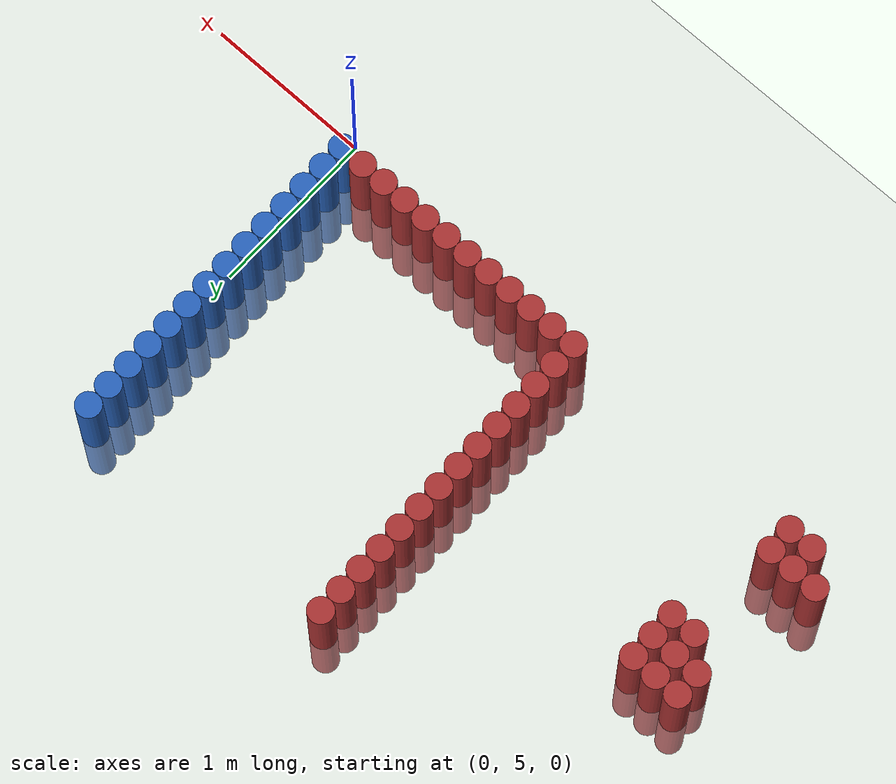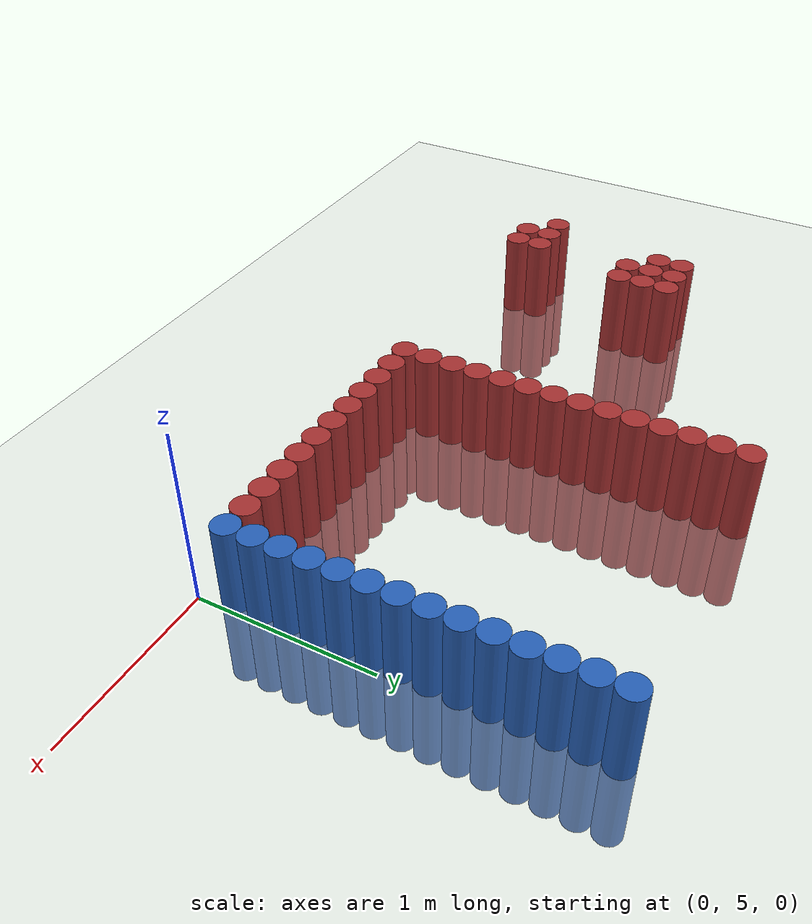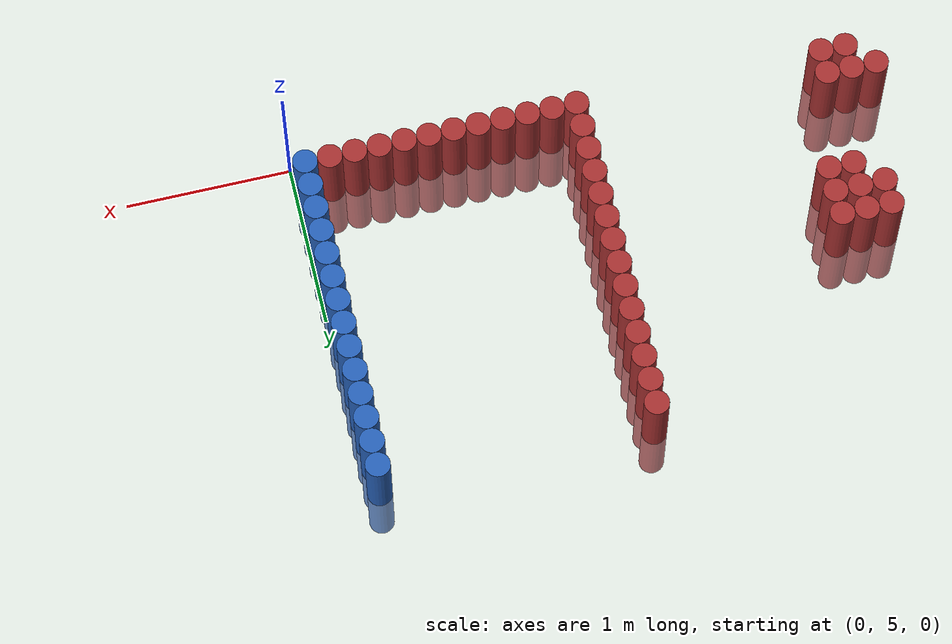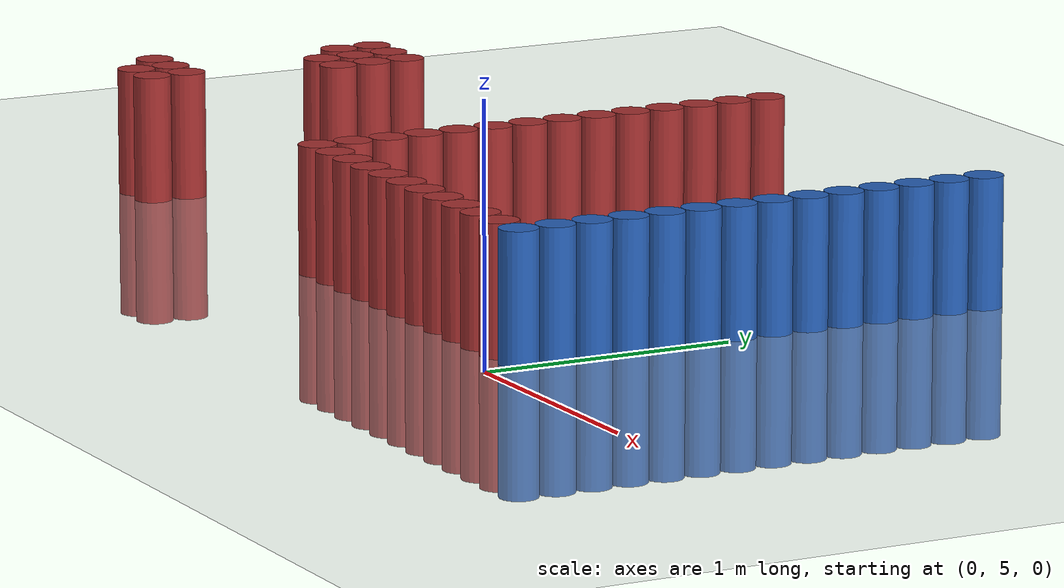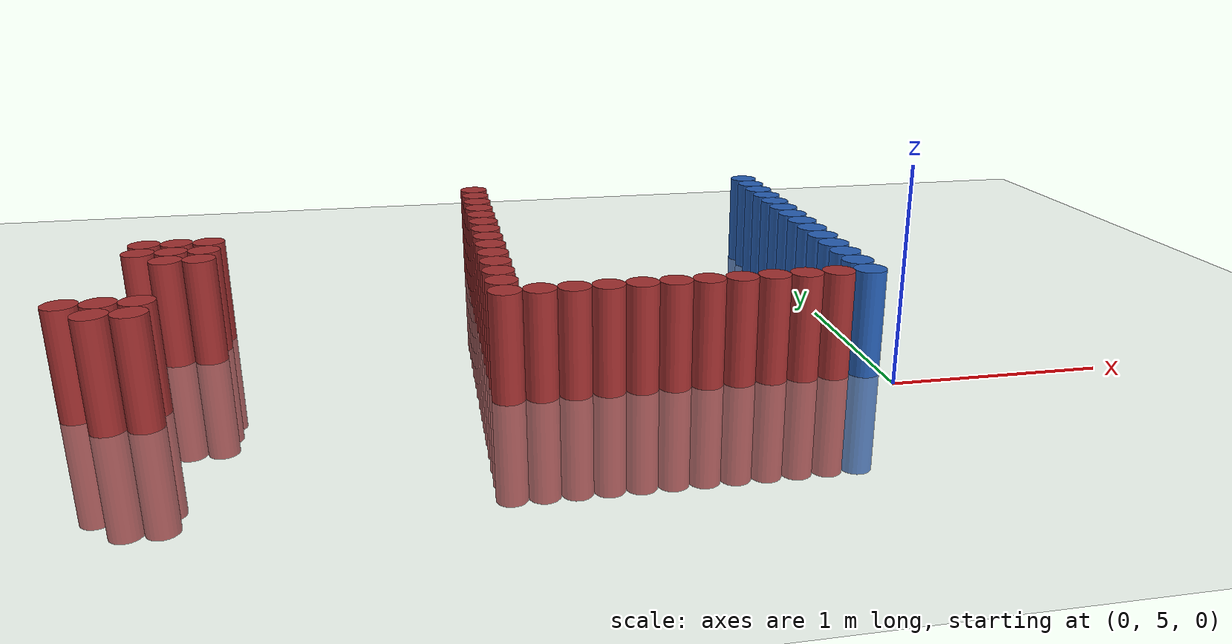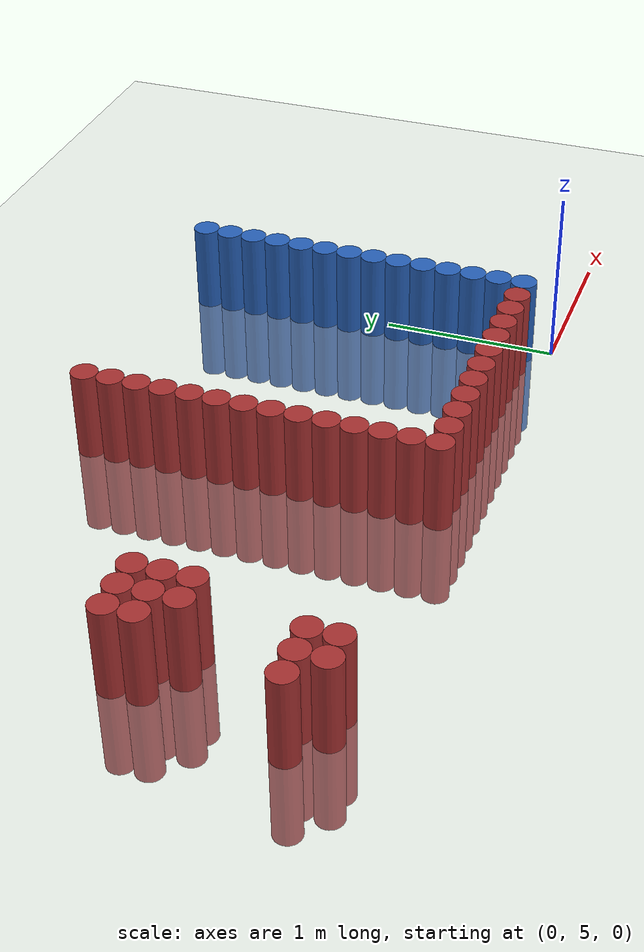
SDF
<sdf version="1.6">
 <world name="default">
  <model name="ground_plane">
   <static>1</static>
   <link name="link">
    <collision name="collision">
     <geometry><plane><normal>0 0 1</normal><size>100 100</size></plane></geometry>
     <surface><friction><ode><mu>100</mu><mu2>50</mu2></ode></friction></surface>
    </collision>
    <visual name="visual">
     <cast_shadows>0</cast_shadows>
     <geometry><plane><normal>0 0 1</normal><size>100 100</size></plane></geometry>
     <material>
      <script><uri>file://media/materials/scripts/gazebo.material</uri><name>Gazebo/Grey</name></script>
     </material>
    </visual>
   </link>
  </model>
  <model name="unit_cylinder_256">
   <static>1</static>
   <pose>-3.525000 5.325000 0.000000 0.000000 0.000000 0.000000</pose>
   <link name="link">
    <inertial>
     <mass>1</mass>
     <inertia><ixx>0.145833</ixx><ixy>0</ixy><ixz>0</ixz><iyy>0.145833</iyy><iyz>0</iyz><izz>0.125</izz></inertia>
    </inertial>
    <collision name="collision">
     <geometry><cylinder><radius>0.075000</radius><length>1</length></cylinder></geometry>
    </collision>
    <visual name="visual">
     <geometry><cylinder><radius>0.075000</radius><length>1</length></cylinder></geometry>
     <material>
      <ambient>0.648000 0.192000 0.192000 1</ambient>
      <diffuse>0.648000 0.192000 0.192000 1</diffuse>
     </material>
     <material>
      <script><name>Gazebo/Grey</name><uri>file://media/materials/scripts/gazebo.material</uri></script>
     </material>
    </visual>
   </link>
  </model>
  <model name="unit_cylinder_259">
   <static>1</static>
   <pose>-3.375000 5.175000 0.000000 0.000000 0.000000 0.000000</pose>
   <link name="link">
    <inertial>
     <mass>1</mass>
     <inertia><ixx>0.145833</ixx><ixy>0</ixy><ixz>0</ixz><iyy>0.145833</iyy><iyz>0</iyz><izz>0.125</izz></inertia>
    </inertial>
    <collision name="collision">
     <geometry><cylinder><radius>0.075000</radius><length>1</length></cylinder></geometry>
    </collision>
    <visual name="visual">
     <geometry><cylinder><radius>0.075000</radius><length>1</length></cylinder></geometry>
     <material>
      <ambient>0.648000 0.192000 0.192000 1</ambient>
      <diffuse>0.648000 0.192000 0.192000 1</diffuse>
     </material>
     <material>
      <script><name>Gazebo/Grey</name><uri>file://media/materials/scripts/gazebo.material</uri></script>
     </material>
    </visual>
   </link>
  </model>
  <model name="unit_cylinder_260">
   <static>1</static>
   <pose>-3.375000 5.325000 0.000000 0.000000 0.000000 0.000000</pose>
   <link name="link">
    <inertial>
     <mass>1</mass>
     <inertia><ixx>0.145833</ixx><ixy>0</ixy><ixz>0</ixz><iyy>0.145833</iyy><iyz>0</iyz><izz>0.125</izz></inertia>
    </inertial>
    <collision name="collision">
     <geometry><cylinder><radius>0.075000</radius><length>1</length></cylinder></geometry>
    </collision>
    <visual name="visual">
     <geometry><cylinder><radius>0.075000</radius><length>1</length></cylinder></geometry>
     <material>
      <ambient>0.648000 0.192000 0.192000 1</ambient>
      <diffuse>0.648000 0.192000 0.192000 1</diffuse>
     </material>
     <material>
      <script><name>Gazebo/Grey</name><uri>file://media/materials/scripts/gazebo.material</uri></script>
     </material>
    </visual>
   </link>
  </model>
  <model name="unit_cylinder_261">
   <static>1</static>
   <pose>-3.375000 6.075000 0.000000 0.000000 0.000000 0.000000</pose>
   <link name="link">
    <inertial>
     <mass>1</mass>
     <inertia><ixx>0.145833</ixx><ixy>0</ixy><ixz>0</ixz><iyy>0.145833</iyy><iyz>0</iyz><izz>0.125</izz></inertia>
    </inertial>
    <collision name="collision">
     <geometry><cylinder><radius>0.075000</radius><length>1</length></cylinder></geometry>
    </collision>
    <visual name="visual">
     <geometry><cylinder><radius>0.075000</radius><length>1</length></cylinder></geometry>
     <material>
      <ambient>0.648000 0.192000 0.192000 1</ambient>
      <diffuse>0.648000 0.192000 0.192000 1</diffuse>
     </material>
     <material>
      <script><name>Gazebo/Grey</name><uri>file://media/materials/scripts/gazebo.material</uri></script>
     </material>
    </visual>
   </link>
  </model>
  <model name="unit_cylinder_262">
   <static>1</static>
   <pose>-3.375000 6.225000 0.000000 0.000000 0.000000 0.000000</pose>
   <link name="link">
    <inertial>
     <mass>1</mass>
     <inertia><ixx>0.145833</ixx><ixy>0</ixy><ixz>0</ixz><iyy>0.145833</iyy><iyz>0</iyz><izz>0.125</izz></inertia>
    </inertial>
    <collision name="collision">
     <geometry><cylinder><radius>0.075000</radius><length>1</length></cylinder></geometry>
    </collision>
    <visual name="visual">
     <geometry><cylinder><radius>0.075000</radius><length>1</length></cylinder></geometry>
     <material>
      <ambient>0.648000 0.192000 0.192000 1</ambient>
      <diffuse>0.648000 0.192000 0.192000 1</diffuse>
     </material>
     <material>
      <script><name>Gazebo/Grey</name><uri>file://media/materials/scripts/gazebo.material</uri></script>
     </material>
    </visual>
   </link>
  </model>
  <model name="unit_cylinder_267">
   <static>1</static>
   <pose>-3.225000 5.175000 0.000000 0.000000 0.000000 0.000000</pose>
   <link name="link">
    <inertial>
     <mass>1</mass>
     <inertia><ixx>0.145833</ixx><ixy>0</ixy><ixz>0</ixz><iyy>0.145833</iyy><iyz>0</iyz><izz>0.125</izz></inertia>
    </inertial>
    <collision name="collision">
     <geometry><cylinder><radius>0.075000</radius><length>1</length></cylinder></geometry>
    </collision>
    <visual name="visual">
     <geometry><cylinder><radius>0.075000</radius><length>1</length></cylinder></geometry>
     <material>
      <ambient>0.648000 0.192000 0.192000 1</ambient>
      <diffuse>0.648000 0.192000 0.192000 1</diffuse>
     </material>
     <material>
      <script><name>Gazebo/Grey</name><uri>file://media/materials/scripts/gazebo.material</uri></script>
     </material>
    </visual>
   </link>
  </model>
  <model name="unit_cylinder_268">
   <static>1</static>
   <pose>-3.225000 5.325000 0.000000 0.000000 0.000000 0.000000</pose>
   <link name="link">
    <inertial>
     <mass>1</mass>
     <inertia><ixx>0.145833</ixx><ixy>0</ixy><ixz>0</ixz><iyy>0.145833</iyy><iyz>0</iyz><izz>0.125</izz></inertia>
    </inertial>
    <collision name="collision">
     <geometry><cylinder><radius>0.075000</radius><length>1</length></cylinder></geometry>
    </collision>
    <visual name="visual">
     <geometry><cylinder><radius>0.075000</radius><length>1</length></cylinder></geometry>
     <material>
      <ambient>0.648000 0.192000 0.192000 1</ambient>
      <diffuse>0.648000 0.192000 0.192000 1</diffuse>
     </material>
     <material>
      <script><name>Gazebo/Grey</name><uri>file://media/materials/scripts/gazebo.material</uri></script>
     </material>
    </visual>
   </link>
  </model>
  <model name="unit_cylinder_269">
   <static>1</static>
   <pose>-3.225000 5.925000 0.000000 0.000000 0.000000 0.000000</pose>
   <link name="link">
    <inertial>
     <mass>1</mass>
     <inertia><ixx>0.145833</ixx><ixy>0</ixy><ixz>0</ixz><iyy>0.145833</iyy><iyz>0</iyz><izz>0.125</izz></inertia>
    </inertial>
    <collision name="collision">
     <geometry><cylinder><radius>0.075000</radius><length>1</length></cylinder></geometry>
    </collision>
    <visual name="visual">
     <geometry><cylinder><radius>0.075000</radius><length>1</length></cylinder></geometry>
     <material>
      <ambient>0.648000 0.192000 0.192000 1</ambient>
      <diffuse>0.648000 0.192000 0.192000 1</diffuse>
     </material>
     <material>
      <script><name>Gazebo/Grey</name><uri>file://media/materials/scripts/gazebo.material</uri></script>
     </material>
    </visual>
   </link>
  </model>
  <model name="unit_cylinder_270">
   <static>1</static>
   <pose>-3.225000 6.075000 0.000000 0.000000 0.000000 0.000000</pose>
   <link name="link">
    <inertial>
     <mass>1</mass>
     <inertia><ixx>0.145833</ixx><ixy>0</ixy><ixz>0</ixz><iyy>0.145833</iyy><iyz>0</iyz><izz>0.125</izz></inertia>
    </inertial>
    <collision name="collision">
     <geometry><cylinder><radius>0.075000</radius><length>1</length></cylinder></geometry>
    </collision>
    <visual name="visual">
     <geometry><cylinder><radius>0.075000</radius><length>1</length></cylinder></geometry>
     <material>
      <ambient>0.648000 0.192000 0.192000 1</ambient>
      <diffuse>0.648000 0.192000 0.192000 1</diffuse>
     </material>
     <material>
      <script><name>Gazebo/Grey</name><uri>file://media/materials/scripts/gazebo.material</uri></script>
     </material>
    </visual>
   </link>
  </model>
  <model name="unit_cylinder_271">
   <static>1</static>
   <pose>-3.225000 6.225000 0.000000 0.000000 0.000000 0.000000</pose>
   <link name="link">
    <inertial>
     <mass>1</mass>
     <inertia><ixx>0.145833</ixx><ixy>0</ixy><ixz>0</ixz><iyy>0.145833</iyy><iyz>0</iyz><izz>0.125</izz></inertia>
    </inertial>
    <collision name="collision">
     <geometry><cylinder><radius>0.075000</radius><length>1</length></cylinder></geometry>
    </collision>
    <visual name="visual">
     <geometry><cylinder><radius>0.075000</radius><length>1</length></cylinder></geometry>
     <material>
      <ambient>0.648000 0.192000 0.192000 1</ambient>
      <diffuse>0.648000 0.192000 0.192000 1</diffuse>
     </material>
     <material>
      <script><name>Gazebo/Grey</name><uri>file://media/materials/scripts/gazebo.material</uri></script>
     </material>
    </visual>
   </link>
  </model>
  <model name="unit_cylinder_274">
   <static>1</static>
   <pose>-3.075000 5.925000 0.000000 0.000000 0.000000 0.000000</pose>
   <link name="link">
    <inertial>
     <mass>1</mass>
     <inertia><ixx>0.145833</ixx><ixy>0</ixy><ixz>0</ixz><iyy>0.145833</iyy><iyz>0</iyz><izz>0.125</izz></inertia>
    </inertial>
    <collision name="collision">
     <geometry><cylinder><radius>0.075000</radius><length>1</length></cylinder></geometry>
    </collision>
    <visual name="visual">
     <geometry><cylinder><radius>0.075000</radius><length>1</length></cylinder></geometry>
     <material>
      <ambient>0.648000 0.192000 0.192000 1</ambient>
      <diffuse>0.648000 0.192000 0.192000 1</diffuse>
     </material>
     <material>
      <script><name>Gazebo/Grey</name><uri>file://media/materials/scripts/gazebo.material</uri></script>
     </material>
    </visual>
   </link>
  </model>
  <model name="unit_cylinder_275">
   <static>1</static>
   <pose>-3.075000 6.075000 0.000000 0.000000 0.000000 0.000000</pose>
   <link name="link">
    <inertial>
     <mass>1</mass>
     <inertia><ixx>0.145833</ixx><ixy>0</ixy><ixz>0</ixz><iyy>0.145833</iyy><iyz>0</iyz><izz>0.125</izz></inertia>
    </inertial>
    <collision name="collision">
     <geometry><cylinder><radius>0.075000</radius><length>1</length></cylinder></geometry>
    </collision>
    <visual name="visual">
     <geometry><cylinder><radius>0.075000</radius><length>1</length></cylinder></geometry>
     <material>
      <ambient>0.648000 0.192000 0.192000 1</ambient>
      <diffuse>0.648000 0.192000 0.192000 1</diffuse>
     </material>
     <material>
      <script><name>Gazebo/Grey</name><uri>file://media/materials/scripts/gazebo.material</uri></script>
     </material>
    </visual>
   </link>
  </model>
  <model name="unit_cylinder_276">
   <static>1</static>
   <pose>-3.075000 6.225000 0.000000 0.000000 0.000000 0.000000</pose>
   <link name="link">
    <inertial>
     <mass>1</mass>
     <inertia><ixx>0.145833</ixx><ixy>0</ixy><ixz>0</ixz><iyy>0.145833</iyy><iyz>0</iyz><izz>0.125</izz></inertia>
    </inertial>
    <collision name="collision">
     <geometry><cylinder><radius>0.075000</radius><length>1</length></cylinder></geometry>
    </collision>
    <visual name="visual">
     <geometry><cylinder><radius>0.075000</radius><length>1</length></cylinder></geometry>
     <material>
      <ambient>0.648000 0.192000 0.192000 1</ambient>
      <diffuse>0.648000 0.192000 0.192000 1</diffuse>
     </material>
     <material>
      <script><name>Gazebo/Grey</name><uri>file://media/materials/scripts/gazebo.material</uri></script>
     </material>
    </visual>
   </link>
  </model>
  <model name="unit_cylinder_291">
   <static>1</static>
   <pose>-1.725000 5.175000 0.000000 0.000000 0.000000 0.000000</pose>
   <link name="link">
    <inertial>
     <mass>1</mass>
     <inertia><ixx>0.145833</ixx><ixy>0</ixy><ixz>0</ixz><iyy>0.145833</iyy><iyz>0</iyz><izz>0.125</izz></inertia>
    </inertial>
    <collision name="collision">
     <geometry><cylinder><radius>0.075000</radius><length>1</length></cylinder></geometry>
    </collision>
    <visual name="visual">
     <geometry><cylinder><radius>0.075000</radius><length>1</length></cylinder></geometry>
     <material>
      <ambient>0.648000 0.192000 0.192000 1</ambient>
      <diffuse>0.648000 0.192000 0.192000 1</diffuse>
     </material>
     <material>
      <script><name>Gazebo/Grey</name><uri>file://media/materials/scripts/gazebo.material</uri></script>
     </material>
    </visual>
   </link>
  </model>
  <model name="unit_cylinder_292">
   <static>1</static>
   <pose>-1.725000 5.325000 0.000000 0.000000 0.000000 0.000000</pose>
   <link name="link">
    <inertial>
     <mass>1</mass>
     <inertia><ixx>0.145833</ixx><ixy>0</ixy><ixz>0</ixz><iyy>0.145833</iyy><iyz>0</iyz><izz>0.125</izz></inertia>
    </inertial>
    <collision name="collision">
     <geometry><cylinder><radius>0.075000</radius><length>1</length></cylinder></geometry>
    </collision>
    <visual name="visual">
     <geometry><cylinder><radius>0.075000</radius><length>1</length></cylinder></geometry>
     <material>
      <ambient>0.648000 0.192000 0.192000 1</ambient>
      <diffuse>0.648000 0.192000 0.192000 1</diffuse>
     </material>
     <material>
      <script><name>Gazebo/Grey</name><uri>file://media/materials/scripts/gazebo.material</uri></script>
     </material>
    </visual>
   </link>
  </model>
  <model name="unit_cylinder_293">
   <static>1</static>
   <pose>-1.725000 5.475000 0.000000 0.000000 0.000000 0.000000</pose>
   <link name="link">
    <inertial>
     <mass>1</mass>
     <inertia><ixx>0.145833</ixx><ixy>0</ixy><ixz>0</ixz><iyy>0.145833</iyy><iyz>0</iyz><izz>0.125</izz></inertia>
    </inertial>
    <collision name="collision">
     <geometry><cylinder><radius>0.075000</radius><length>1</length></cylinder></geometry>
    </collision>
    <visual name="visual">
     <geometry><cylinder><radius>0.075000</radius><length>1</length></cylinder></geometry>
     <material>
      <ambient>0.648000 0.192000 0.192000 1</ambient>
      <diffuse>0.648000 0.192000 0.192000 1</diffuse>
     </material>
     <material>
      <script><name>Gazebo/Grey</name><uri>file://media/materials/scripts/gazebo.material</uri></script>
     </material>
    </visual>
   </link>
  </model>
  <model name="unit_cylinder_294">
   <static>1</static>
   <pose>-1.725000 5.625000 0.000000 0.000000 0.000000 0.000000</pose>
   <link name="link">
    <inertial>
     <mass>1</mass>
     <inertia><ixx>0.145833</ixx><ixy>0</ixy><ixz>0</ixz><iyy>0.145833</iyy><iyz>0</iyz><izz>0.125</izz></inertia>
    </inertial>
    <collision name="collision">
     <geometry><cylinder><radius>0.075000</radius><length>1</length></cylinder></geometry>
    </collision>
    <visual name="visual">
     <geometry><cylinder><radius>0.075000</radius><length>1</length></cylinder></geometry>
     <material>
      <ambient>0.648000 0.192000 0.192000 1</ambient>
      <diffuse>0.648000 0.192000 0.192000 1</diffuse>
     </material>
     <material>
      <script><name>Gazebo/Grey</name><uri>file://media/materials/scripts/gazebo.material</uri></script>
     </material>
    </visual>
   </link>
  </model>
  <model name="unit_cylinder_295">
   <static>1</static>
   <pose>-1.725000 5.775000 0.000000 0.000000 0.000000 0.000000</pose>
   <link name="link">
    <inertial>
     <mass>1</mass>
     <inertia><ixx>0.145833</ixx><ixy>0</ixy><ixz>0</ixz><iyy>0.145833</iyy><iyz>0</iyz><izz>0.125</izz></inertia>
    </inertial>
    <collision name="collision">
     <geometry><cylinder><radius>0.075000</radius><length>1</length></cylinder></geometry>
    </collision>
    <visual name="visual">
     <geometry><cylinder><radius>0.075000</radius><length>1</length></cylinder></geometry>
     <material>
      <ambient>0.648000 0.192000 0.192000 1</ambient>
      <diffuse>0.648000 0.192000 0.192000 1</diffuse>
     </material>
     <material>
      <script><name>Gazebo/Grey</name><uri>file://media/materials/scripts/gazebo.material</uri></script>
     </material>
    </visual>
   </link>
  </model>
  <model name="unit_cylinder_296">
   <static>1</static>
   <pose>-1.725000 5.925000 0.000000 0.000000 0.000000 0.000000</pose>
   <link name="link">
    <inertial>
     <mass>1</mass>
     <inertia><ixx>0.145833</ixx><ixy>0</ixy><ixz>0</ixz><iyy>0.145833</iyy><iyz>0</iyz><izz>0.125</izz></inertia>
    </inertial>
    <collision name="collision">
     <geometry><cylinder><radius>0.075000</radius><length>1</length></cylinder></geometry>
    </collision>
    <visual name="visual">
     <geometry><cylinder><radius>0.075000</radius><length>1</length></cylinder></geometry>
     <material>
      <ambient>0.648000 0.192000 0.192000 1</ambient>
      <diffuse>0.648000 0.192000 0.192000 1</diffuse>
     </material>
     <material>
      <script><name>Gazebo/Grey</name><uri>file://media/materials/scripts/gazebo.material</uri></script>
     </material>
    </visual>
   </link>
  </model>
  <model name="unit_cylinder_297">
   <static>1</static>
   <pose>-1.725000 6.075000 0.000000 0.000000 0.000000 0.000000</pose>
   <link name="link">
    <inertial>
     <mass>1</mass>
     <inertia><ixx>0.145833</ixx><ixy>0</ixy><ixz>0</ixz><iyy>0.145833</iyy><iyz>0</iyz><izz>0.125</izz></inertia>
    </inertial>
    <collision name="collision">
     <geometry><cylinder><radius>0.075000</radius><length>1</length></cylinder></geometry>
    </collision>
    <visual name="visual">
     <geometry><cylinder><radius>0.075000</radius><length>1</length></cylinder></geometry>
     <material>
      <ambient>0.648000 0.192000 0.192000 1</ambient>
      <diffuse>0.648000 0.192000 0.192000 1</diffuse>
     </material>
     <material>
      <script><name>Gazebo/Grey</name><uri>file://media/materials/scripts/gazebo.material</uri></script>
     </material>
    </visual>
   </link>
  </model>
  <model name="unit_cylinder_298">
   <static>1</static>
   <pose>-1.725000 6.225000 0.000000 0.000000 0.000000 0.000000</pose>
   <link name="link">
    <inertial>
     <mass>1</mass>
     <inertia><ixx>0.145833</ixx><ixy>0</ixy><ixz>0</ixz><iyy>0.145833</iyy><iyz>0</iyz><izz>0.125</izz></inertia>
    </inertial>
    <collision name="collision">
     <geometry><cylinder><radius>0.075000</radius><length>1</length></cylinder></geometry>
    </collision>
    <visual name="visual">
     <geometry><cylinder><radius>0.075000</radius><length>1</length></cylinder></geometry>
     <material>
      <ambient>0.648000 0.192000 0.192000 1</ambient>
      <diffuse>0.648000 0.192000 0.192000 1</diffuse>
     </material>
     <material>
      <script><name>Gazebo/Grey</name><uri>file://media/materials/scripts/gazebo.material</uri></script>
     </material>
    </visual>
   </link>
  </model>
  <model name="unit_cylinder_299">
   <static>1</static>
   <pose>-1.725000 6.375000 0.000000 0.000000 0.000000 0.000000</pose>
   <link name="link">
    <inertial>
     <mass>1</mass>
     <inertia><ixx>0.145833</ixx><ixy>0</ixy><ixz>0</ixz><iyy>0.145833</iyy><iyz>0</iyz><izz>0.125</izz></inertia>
    </inertial>
    <collision name="collision">
     <geometry><cylinder><radius>0.075000</radius><length>1</length></cylinder></geometry>
    </collision>
    <visual name="visual">
     <geometry><cylinder><radius>0.075000</radius><length>1</length></cylinder></geometry>
     <material>
      <ambient>0.648000 0.192000 0.192000 1</ambient>
      <diffuse>0.648000 0.192000 0.192000 1</diffuse>
     </material>
     <material>
      <script><name>Gazebo/Grey</name><uri>file://media/materials/scripts/gazebo.material</uri></script>
     </material>
    </visual>
   </link>
  </model>
  <model name="unit_cylinder_300">
   <static>1</static>
   <pose>-1.725000 6.525000 0.000000 0.000000 0.000000 0.000000</pose>
   <link name="link">
    <inertial>
     <mass>1</mass>
     <inertia><ixx>0.145833</ixx><ixy>0</ixy><ixz>0</ixz><iyy>0.145833</iyy><iyz>0</iyz><izz>0.125</izz></inertia>
    </inertial>
    <collision name="collision">
     <geometry><cylinder><radius>0.075000</radius><length>1</length></cylinder></geometry>
    </collision>
    <visual name="visual">
     <geometry><cylinder><radius>0.075000</radius><length>1</length></cylinder></geometry>
     <material>
      <ambient>0.648000 0.192000 0.192000 1</ambient>
      <diffuse>0.648000 0.192000 0.192000 1</diffuse>
     </material>
     <material>
      <script><name>Gazebo/Grey</name><uri>file://media/materials/scripts/gazebo.material</uri></script>
     </material>
    </visual>
   </link>
  </model>
  <model name="unit_cylinder_301">
   <static>1</static>
   <pose>-1.725000 6.675000 0.000000 0.000000 0.000000 0.000000</pose>
   <link name="link">
    <inertial>
     <mass>1</mass>
     <inertia><ixx>0.145833</ixx><ixy>0</ixy><ixz>0</ixz><iyy>0.145833</iyy><iyz>0</iyz><izz>0.125</izz></inertia>
    </inertial>
    <collision name="collision">
     <geometry><cylinder><radius>0.075000</radius><length>1</length></cylinder></geometry>
    </collision>
    <visual name="visual">
     <geometry><cylinder><radius>0.075000</radius><length>1</length></cylinder></geometry>
     <material>
      <ambient>0.648000 0.192000 0.192000 1</ambient>
      <diffuse>0.648000 0.192000 0.192000 1</diffuse>
     </material>
     <material>
      <script><name>Gazebo/Grey</name><uri>file://media/materials/scripts/gazebo.material</uri></script>
     </material>
    </visual>
   </link>
  </model>
  <model name="unit_cylinder_302">
   <static>1</static>
   <pose>-1.725000 6.825000 0.000000 0.000000 0.000000 0.000000</pose>
   <link name="link">
    <inertial>
     <mass>1</mass>
     <inertia><ixx>0.145833</ixx><ixy>0</ixy><ixz>0</ixz><iyy>0.145833</iyy><iyz>0</iyz><izz>0.125</izz></inertia>
    </inertial>
    <collision name="collision">
     <geometry><cylinder><radius>0.075000</radius><length>1</length></cylinder></geometry>
    </collision>
    <visual name="visual">
     <geometry><cylinder><radius>0.075000</radius><length>1</length></cylinder></geometry>
     <material>
      <ambient>0.648000 0.192000 0.192000 1</ambient>
      <diffuse>0.648000 0.192000 0.192000 1</diffuse>
     </material>
     <material>
      <script><name>Gazebo/Grey</name><uri>file://media/materials/scripts/gazebo.material</uri></script>
     </material>
    </visual>
   </link>
  </model>
  <model name="unit_cylinder_303">
   <static>1</static>
   <pose>-1.725000 6.975000 0.000000 0.000000 0.000000 0.000000</pose>
   <link name="link">
    <inertial>
     <mass>1</mass>
     <inertia><ixx>0.145833</ixx><ixy>0</ixy><ixz>0</ixz><iyy>0.145833</iyy><iyz>0</iyz><izz>0.125</izz></inertia>
    </inertial>
    <collision name="collision">
     <geometry><cylinder><radius>0.075000</radius><length>1</length></cylinder></geometry>
    </collision>
    <visual name="visual">
     <geometry><cylinder><radius>0.075000</radius><length>1</length></cylinder></geometry>
     <material>
      <ambient>0.648000 0.192000 0.192000 1</ambient>
      <diffuse>0.648000 0.192000 0.192000 1</diffuse>
     </material>
     <material>
      <script><name>Gazebo/Grey</name><uri>file://media/materials/scripts/gazebo.material</uri></script>
     </material>
    </visual>
   </link>
  </model>
  <model name="unit_cylinder_304">
   <static>1</static>
   <pose>-1.725000 7.125000 0.000000 0.000000 0.000000 0.000000</pose>
   <link name="link">
    <inertial>
     <mass>1</mass>
     <inertia><ixx>0.145833</ixx><ixy>0</ixy><ixz>0</ixz><iyy>0.145833</iyy><iyz>0</iyz><izz>0.125</izz></inertia>
    </inertial>
    <collision name="collision">
     <geometry><cylinder><radius>0.075000</radius><length>1</length></cylinder></geometry>
    </collision>
    <visual name="visual">
     <geometry><cylinder><radius>0.075000</radius><length>1</length></cylinder></geometry>
     <material>
      <ambient>0.648000 0.192000 0.192000 1</ambient>
      <diffuse>0.648000 0.192000 0.192000 1</diffuse>
     </material>
     <material>
      <script><name>Gazebo/Grey</name><uri>file://media/materials/scripts/gazebo.material</uri></script>
     </material>
    </visual>
   </link>
  </model>
  <model name="unit_cylinder_309">
   <static>1</static>
   <pose>-1.575000 5.175000 0.000000 0.000000 0.000000 0.000000</pose>
   <link name="link">
    <inertial>
     <mass>1</mass>
     <inertia><ixx>0.145833</ixx><ixy>0</ixy><ixz>0</ixz><iyy>0.145833</iyy><iyz>0</iyz><izz>0.125</izz></inertia>
    </inertial>
    <collision name="collision">
     <geometry><cylinder><radius>0.075000</radius><length>1</length></cylinder></geometry>
    </collision>
    <visual name="visual">
     <geometry><cylinder><radius>0.075000</radius><length>1</length></cylinder></geometry>
     <material>
      <ambient>0.648000 0.192000 0.192000 1</ambient>
      <diffuse>0.648000 0.192000 0.192000 1</diffuse>
     </material>
     <material>
      <script><name>Gazebo/Grey</name><uri>file://media/materials/scripts/gazebo.material</uri></script>
     </material>
    </visual>
   </link>
  </model>
  <model name="unit_cylinder_311">
   <static>1</static>
   <pose>-1.425000 5.175000 0.000000 0.000000 0.000000 0.000000</pose>
   <link name="link">
    <inertial>
     <mass>1</mass>
     <inertia><ixx>0.145833</ixx><ixy>0</ixy><ixz>0</ixz><iyy>0.145833</iyy><iyz>0</iyz><izz>0.125</izz></inertia>
    </inertial>
    <collision name="collision">
     <geometry><cylinder><radius>0.075000</radius><length>1</length></cylinder></geometry>
    </collision>
    <visual name="visual">
     <geometry><cylinder><radius>0.075000</radius><length>1</length></cylinder></geometry>
     <material>
      <ambient>0.648000 0.192000 0.192000 1</ambient>
      <diffuse>0.648000 0.192000 0.192000 1</diffuse>
     </material>
     <material>
      <script><name>Gazebo/Grey</name><uri>file://media/materials/scripts/gazebo.material</uri></script>
     </material>
    </visual>
   </link>
  </model>
  <model name="unit_cylinder_313">
   <static>1</static>
   <pose>-1.275000 5.175000 0.000000 0.000000 0.000000 0.000000</pose>
   <link name="link">
    <inertial>
     <mass>1</mass>
     <inertia><ixx>0.145833</ixx><ixy>0</ixy><ixz>0</ixz><iyy>0.145833</iyy><iyz>0</iyz><izz>0.125</izz></inertia>
    </inertial>
    <collision name="collision">
     <geometry><cylinder><radius>0.075000</radius><length>1</length></cylinder></geometry>
    </collision>
    <visual name="visual">
     <geometry><cylinder><radius>0.075000</radius><length>1</length></cylinder></geometry>
     <material>
      <ambient>0.648000 0.192000 0.192000 1</ambient>
      <diffuse>0.648000 0.192000 0.192000 1</diffuse>
     </material>
     <material>
      <script><name>Gazebo/Grey</name><uri>file://media/materials/scripts/gazebo.material</uri></script>
     </material>
    </visual>
   </link>
  </model>
  <model name="unit_cylinder_315">
   <static>1</static>
   <pose>-1.125000 5.175000 0.000000 0.000000 0.000000 0.000000</pose>
   <link name="link">
    <inertial>
     <mass>1</mass>
     <inertia><ixx>0.145833</ixx><ixy>0</ixy><ixz>0</ixz><iyy>0.145833</iyy><iyz>0</iyz><izz>0.125</izz></inertia>
    </inertial>
    <collision name="collision">
     <geometry><cylinder><radius>0.075000</radius><length>1</length></cylinder></geometry>
    </collision>
    <visual name="visual">
     <geometry><cylinder><radius>0.075000</radius><length>1</length></cylinder></geometry>
     <material>
      <ambient>0.648000 0.192000 0.192000 1</ambient>
      <diffuse>0.648000 0.192000 0.192000 1</diffuse>
     </material>
     <material>
      <script><name>Gazebo/Grey</name><uri>file://media/materials/scripts/gazebo.material</uri></script>
     </material>
    </visual>
   </link>
  </model>
  <model name="unit_cylinder_317">
   <static>1</static>
   <pose>-0.975000 5.175000 0.000000 0.000000 0.000000 0.000000</pose>
   <link name="link">
    <inertial>
     <mass>1</mass>
     <inertia><ixx>0.145833</ixx><ixy>0</ixy><ixz>0</ixz><iyy>0.145833</iyy><iyz>0</iyz><izz>0.125</izz></inertia>
    </inertial>
    <collision name="collision">
     <geometry><cylinder><radius>0.075000</radius><length>1</length></cylinder></geometry>
    </collision>
    <visual name="visual">
     <geometry><cylinder><radius>0.075000</radius><length>1</length></cylinder></geometry>
     <material>
      <ambient>0.648000 0.192000 0.192000 1</ambient>
      <diffuse>0.648000 0.192000 0.192000 1</diffuse>
     </material>
     <material>
      <script><name>Gazebo/Grey</name><uri>file://media/materials/scripts/gazebo.material</uri></script>
     </material>
    </visual>
   </link>
  </model>
  <model name="unit_cylinder_319">
   <static>1</static>
   <pose>-0.825000 5.175000 0.000000 0.000000 0.000000 0.000000</pose>
   <link name="link">
    <inertial>
     <mass>1</mass>
     <inertia><ixx>0.145833</ixx><ixy>0</ixy><ixz>0</ixz><iyy>0.145833</iyy><iyz>0</iyz><izz>0.125</izz></inertia>
    </inertial>
    <collision name="collision">
     <geometry><cylinder><radius>0.075000</radius><length>1</length></cylinder></geometry>
    </collision>
    <visual name="visual">
     <geometry><cylinder><radius>0.075000</radius><length>1</length></cylinder></geometry>
     <material>
      <ambient>0.648000 0.192000 0.192000 1</ambient>
      <diffuse>0.648000 0.192000 0.192000 1</diffuse>
     </material>
     <material>
      <script><name>Gazebo/Grey</name><uri>file://media/materials/scripts/gazebo.material</uri></script>
     </material>
    </visual>
   </link>
  </model>
  <model name="unit_cylinder_321">
   <static>1</static>
   <pose>-0.675000 5.175000 0.000000 0.000000 0.000000 0.000000</pose>
   <link name="link">
    <inertial>
     <mass>1</mass>
     <inertia><ixx>0.145833</ixx><ixy>0</ixy><ixz>0</ixz><iyy>0.145833</iyy><iyz>0</iyz><izz>0.125</izz></inertia>
    </inertial>
    <collision name="collision">
     <geometry><cylinder><radius>0.075000</radius><length>1</length></cylinder></geometry>
    </collision>
    <visual name="visual">
     <geometry><cylinder><radius>0.075000</radius><length>1</length></cylinder></geometry>
     <material>
      <ambient>0.648000 0.192000 0.192000 1</ambient>
      <diffuse>0.648000 0.192000 0.192000 1</diffuse>
     </material>
     <material>
      <script><name>Gazebo/Grey</name><uri>file://media/materials/scripts/gazebo.material</uri></script>
     </material>
    </visual>
   </link>
  </model>
  <model name="unit_cylinder_323">
   <static>1</static>
   <pose>-0.525000 5.175000 0.000000 0.000000 0.000000 0.000000</pose>
   <link name="link">
    <inertial>
     <mass>1</mass>
     <inertia><ixx>0.145833</ixx><ixy>0</ixy><ixz>0</ixz><iyy>0.145833</iyy><iyz>0</iyz><izz>0.125</izz></inertia>
    </inertial>
    <collision name="collision">
     <geometry><cylinder><radius>0.075000</radius><length>1</length></cylinder></geometry>
    </collision>
    <visual name="visual">
     <geometry><cylinder><radius>0.075000</radius><length>1</length></cylinder></geometry>
     <material>
      <ambient>0.648000 0.192000 0.192000 1</ambient>
      <diffuse>0.648000 0.192000 0.192000 1</diffuse>
     </material>
     <material>
      <script><name>Gazebo/Grey</name><uri>file://media/materials/scripts/gazebo.material</uri></script>
     </material>
    </visual>
   </link>
  </model>
  <model name="unit_cylinder_325">
   <static>1</static>
   <pose>-0.375000 5.175000 0.000000 0.000000 0.000000 0.000000</pose>
   <link name="link">
    <inertial>
     <mass>1</mass>
     <inertia><ixx>0.145833</ixx><ixy>0</ixy><ixz>0</ixz><iyy>0.145833</iyy><iyz>0</iyz><izz>0.125</izz></inertia>
    </inertial>
    <collision name="collision">
     <geometry><cylinder><radius>0.075000</radius><length>1</length></cylinder></geometry>
    </collision>
    <visual name="visual">
     <geometry><cylinder><radius>0.075000</radius><length>1</length></cylinder></geometry>
     <material>
      <ambient>0.648000 0.192000 0.192000 1</ambient>
      <diffuse>0.648000 0.192000 0.192000 1</diffuse>
     </material>
     <material>
      <script><name>Gazebo/Grey</name><uri>file://media/materials/scripts/gazebo.material</uri></script>
     </material>
    </visual>
   </link>
  </model>
  <model name="unit_cylinder_327">
   <static>1</static>
   <pose>-0.225000 5.175000 0.000000 0.000000 0.000000 0.000000</pose>
   <link name="link">
    <inertial>
     <mass>1</mass>
     <inertia><ixx>0.145833</ixx><ixy>0</ixy><ixz>0</ixz><iyy>0.145833</iyy><iyz>0</iyz><izz>0.125</izz></inertia>
    </inertial>
    <collision name="collision">
     <geometry><cylinder><radius>0.075000</radius><length>1</length></cylinder></geometry>
    </collision>
    <visual name="visual">
     <geometry><cylinder><radius>0.075000</radius><length>1</length></cylinder></geometry>
     <material>
      <ambient>0.648000 0.192000 0.192000 1</ambient>
      <diffuse>0.648000 0.192000 0.192000 1</diffuse>
     </material>
     <material>
      <script><name>Gazebo/Grey</name><uri>file://media/materials/scripts/gazebo.material</uri></script>
     </material>
    </visual>
   </link>
  </model>
  <model name="unit_cylinder_329">
   <static>1</static>
   <pose>-0.075000 5.175000 0.000000 0.000000 0.000000 0.000000</pose>
   <link name="link">
    <inertial>
     <mass>1</mass>
     <inertia><ixx>0.145833</ixx><ixy>0</ixy><ixz>0</ixz><iyy>0.145833</iyy><iyz>0</iyz><izz>0.125</izz></inertia>
    </inertial>
    <collision name="collision">
     <geometry><cylinder><radius>0.075000</radius><length>1</length></cylinder></geometry>
    </collision>
    <visual name="visual">
     <geometry><cylinder><radius>0.075000</radius><length>1</length></cylinder></geometry>
     <material>
      <ambient>0.152000 0.379000 0.720000 1</ambient>
      <diffuse>0.152000 0.379000 0.720000 1</diffuse>
     </material>
     <material>
      <script><name>Gazebo/Grey</name><uri>file://media/materials/scripts/gazebo.material</uri></script>
     </material>
    </visual>
   </link>
  </model>
  <model name="unit_cylinder_330">
   <static>1</static>
   <pose>-0.075000 5.325000 0.000000 0.000000 0.000000 0.000000</pose>
   <link name="link">
    <inertial>
     <mass>1</mass>
     <inertia><ixx>0.145833</ixx><ixy>0</ixy><ixz>0</ixz><iyy>0.145833</iyy><iyz>0</iyz><izz>0.125</izz></inertia>
    </inertial>
    <collision name="collision">
     <geometry><cylinder><radius>0.075000</radius><length>1</length></cylinder></geometry>
    </collision>
    <visual name="visual">
     <geometry><cylinder><radius>0.075000</radius><length>1</length></cylinder></geometry>
     <material>
      <ambient>0.152000 0.379000 0.720000 1</ambient>
      <diffuse>0.152000 0.379000 0.720000 1</diffuse>
     </material>
     <material>
      <script><name>Gazebo/Grey</name><uri>file://media/materials/scripts/gazebo.material</uri></script>
     </material>
    </visual>
   </link>
  </model>
  <model name="unit_cylinder_331">
   <static>1</static>
   <pose>-0.075000 5.475000 0.000000 0.000000 0.000000 0.000000</pose>
   <link name="link">
    <inertial>
     <mass>1</mass>
     <inertia><ixx>0.145833</ixx><ixy>0</ixy><ixz>0</ixz><iyy>0.145833</iyy><iyz>0</iyz><izz>0.125</izz></inertia>
    </inertial>
    <collision name="collision">
     <geometry><cylinder><radius>0.075000</radius><length>1</length></cylinder></geometry>
    </collision>
    <visual name="visual">
     <geometry><cylinder><radius>0.075000</radius><length>1</length></cylinder></geometry>
     <material>
      <ambient>0.152000 0.379000 0.720000 1</ambient>
      <diffuse>0.152000 0.379000 0.720000 1</diffuse>
     </material>
     <material>
      <script><name>Gazebo/Grey</name><uri>file://media/materials/scripts/gazebo.material</uri></script>
     </material>
    </visual>
   </link>
  </model>
  <model name="unit_cylinder_332">
   <static>1</static>
   <pose>-0.075000 5.625000 0.000000 0.000000 0.000000 0.000000</pose>
   <link name="link">
    <inertial>
     <mass>1</mass>
     <inertia><ixx>0.145833</ixx><ixy>0</ixy><ixz>0</ixz><iyy>0.145833</iyy><iyz>0</iyz><izz>0.125</izz></inertia>
    </inertial>
    <collision name="collision">
     <geometry><cylinder><radius>0.075000</radius><length>1</length></cylinder></geometry>
    </collision>
    <visual name="visual">
     <geometry><cylinder><radius>0.075000</radius><length>1</length></cylinder></geometry>
     <material>
      <ambient>0.152000 0.379000 0.720000 1</ambient>
      <diffuse>0.152000 0.379000 0.720000 1</diffuse>
     </material>
     <material>
      <script><name>Gazebo/Grey</name><uri>file://media/materials/scripts/gazebo.material</uri></script>
     </material>
    </visual>
   </link>
  </model>
  <model name="unit_cylinder_333">
   <static>1</static>
   <pose>-0.075000 5.775000 0.000000 0.000000 0.000000 0.000000</pose>
   <link name="link">
    <inertial>
     <mass>1</mass>
     <inertia><ixx>0.145833</ixx><ixy>0</ixy><ixz>0</ixz><iyy>0.145833</iyy><iyz>0</iyz><izz>0.125</izz></inertia>
    </inertial>
    <collision name="collision">
     <geometry><cylinder><radius>0.075000</radius><length>1</length></cylinder></geometry>
    </collision>
    <visual name="visual">
     <geometry><cylinder><radius>0.075000</radius><length>1</length></cylinder></geometry>
     <material>
      <ambient>0.152000 0.379000 0.720000 1</ambient>
      <diffuse>0.152000 0.379000 0.720000 1</diffuse>
     </material>
     <material>
      <script><name>Gazebo/Grey</name><uri>file://media/materials/scripts/gazebo.material</uri></script>
     </material>
    </visual>
   </link>
  </model>
  <model name="unit_cylinder_334">
   <static>1</static>
   <pose>-0.075000 5.925000 0.000000 0.000000 0.000000 0.000000</pose>
   <link name="link">
    <inertial>
     <mass>1</mass>
     <inertia><ixx>0.145833</ixx><ixy>0</ixy><ixz>0</ixz><iyy>0.145833</iyy><iyz>0</iyz><izz>0.125</izz></inertia>
    </inertial>
    <collision name="collision">
     <geometry><cylinder><radius>0.075000</radius><length>1</length></cylinder></geometry>
    </collision>
    <visual name="visual">
     <geometry><cylinder><radius>0.075000</radius><length>1</length></cylinder></geometry>
     <material>
      <ambient>0.152000 0.379000 0.720000 1</ambient>
      <diffuse>0.152000 0.379000 0.720000 1</diffuse>
     </material>
     <material>
      <script><name>Gazebo/Grey</name><uri>file://media/materials/scripts/gazebo.material</uri></script>
     </material>
    </visual>
   </link>
  </model>
  <model name="unit_cylinder_335">
   <static>1</static>
   <pose>-0.075000 6.075000 0.000000 0.000000 0.000000 0.000000</pose>
   <link name="link">
    <inertial>
     <mass>1</mass>
     <inertia><ixx>0.145833</ixx><ixy>0</ixy><ixz>0</ixz><iyy>0.145833</iyy><iyz>0</iyz><izz>0.125</izz></inertia>
    </inertial>
    <collision name="collision">
     <geometry><cylinder><radius>0.075000</radius><length>1</length></cylinder></geometry>
    </collision>
    <visual name="visual">
     <geometry><cylinder><radius>0.075000</radius><length>1</length></cylinder></geometry>
     <material>
      <ambient>0.152000 0.379000 0.720000 1</ambient>
      <diffuse>0.152000 0.379000 0.720000 1</diffuse>
     </material>
     <material>
      <script><name>Gazebo/Grey</name><uri>file://media/materials/scripts/gazebo.material</uri></script>
     </material>
    </visual>
   </link>
  </model>
  <model name="unit_cylinder_336">
   <static>1</static>
   <pose>-0.075000 6.225000 0.000000 0.000000 0.000000 0.000000</pose>
   <link name="link">
    <inertial>
     <mass>1</mass>
     <inertia><ixx>0.145833</ixx><ixy>0</ixy><ixz>0</ixz><iyy>0.145833</iyy><iyz>0</iyz><izz>0.125</izz></inertia>
    </inertial>
    <collision name="collision">
     <geometry><cylinder><radius>0.075000</radius><length>1</length></cylinder></geometry>
    </collision>
    <visual name="visual">
     <geometry><cylinder><radius>0.075000</radius><length>1</length></cylinder></geometry>
     <material>
      <ambient>0.152000 0.379000 0.720000 1</ambient>
      <diffuse>0.152000 0.379000 0.720000 1</diffuse>
     </material>
     <material>
      <script><name>Gazebo/Grey</name><uri>file://media/materials/scripts/gazebo.material</uri></script>
     </material>
    </visual>
   </link>
  </model>
  <model name="unit_cylinder_337">
   <static>1</static>
   <pose>-0.075000 6.375000 0.000000 0.000000 0.000000 0.000000</pose>
   <link name="link">
    <inertial>
     <mass>1</mass>
     <inertia><ixx>0.145833</ixx><ixy>0</ixy><ixz>0</ixz><iyy>0.145833</iyy><iyz>0</iyz><izz>0.125</izz></inertia>
    </inertial>
    <collision name="collision">
     <geometry><cylinder><radius>0.075000</radius><length>1</length></cylinder></geometry>
    </collision>
    <visual name="visual">
     <geometry><cylinder><radius>0.075000</radius><length>1</length></cylinder></geometry>
     <material>
      <ambient>0.152000 0.379000 0.720000 1</ambient>
      <diffuse>0.152000 0.379000 0.720000 1</diffuse>
     </material>
     <material>
      <script><name>Gazebo/Grey</name><uri>file://media/materials/scripts/gazebo.material</uri></script>
     </material>
    </visual>
   </link>
  </model>
  <model name="unit_cylinder_338">
   <static>1</static>
   <pose>-0.075000 6.525000 0.000000 0.000000 0.000000 0.000000</pose>
   <link name="link">
    <inertial>
     <mass>1</mass>
     <inertia><ixx>0.145833</ixx><ixy>0</ixy><ixz>0</ixz><iyy>0.145833</iyy><iyz>0</iyz><izz>0.125</izz></inertia>
    </inertial>
    <collision name="collision">
     <geometry><cylinder><radius>0.075000</radius><length>1</length></cylinder></geometry>
    </collision>
    <visual name="visual">
     <geometry><cylinder><radius>0.075000</radius><length>1</length></cylinder></geometry>
     <material>
      <ambient>0.152000 0.379000 0.720000 1</ambient>
      <diffuse>0.152000 0.379000 0.720000 1</diffuse>
     </material>
     <material>
      <script><name>Gazebo/Grey</name><uri>file://media/materials/scripts/gazebo.material</uri></script>
     </material>
    </visual>
   </link>
  </model>
  <model name="unit_cylinder_339">
   <static>1</static>
   <pose>-0.075000 6.675000 0.000000 0.000000 0.000000 0.000000</pose>
   <link name="link">
    <inertial>
     <mass>1</mass>
     <inertia><ixx>0.145833</ixx><ixy>0</ixy><ixz>0</ixz><iyy>0.145833</iyy><iyz>0</iyz><izz>0.125</izz></inertia>
    </inertial>
    <collision name="collision">
     <geometry><cylinder><radius>0.075000</radius><length>1</length></cylinder></geometry>
    </collision>
    <visual name="visual">
     <geometry><cylinder><radius>0.075000</radius><length>1</length></cylinder></geometry>
     <material>
      <ambient>0.152000 0.379000 0.720000 1</ambient>
      <diffuse>0.152000 0.379000 0.720000 1</diffuse>
     </material>
     <material>
      <script><name>Gazebo/Grey</name><uri>file://media/materials/scripts/gazebo.material</uri></script>
     </material>
    </visual>
   </link>
  </model>
  <model name="unit_cylinder_340">
   <static>1</static>
   <pose>-0.075000 6.825000 0.000000 0.000000 0.000000 0.000000</pose>
   <link name="link">
    <inertial>
     <mass>1</mass>
     <inertia><ixx>0.145833</ixx><ixy>0</ixy><ixz>0</ixz><iyy>0.145833</iyy><iyz>0</iyz><izz>0.125</izz></inertia>
    </inertial>
    <collision name="collision">
     <geometry><cylinder><radius>0.075000</radius><length>1</length></cylinder></geometry>
    </collision>
    <visual name="visual">
     <geometry><cylinder><radius>0.075000</radius><length>1</length></cylinder></geometry>
     <material>
      <ambient>0.152000 0.379000 0.720000 1</ambient>
      <diffuse>0.152000 0.379000 0.720000 1</diffuse>
     </material>
     <material>
      <script><name>Gazebo/Grey</name><uri>file://media/materials/scripts/gazebo.material</uri></script>
     </material>
    </visual>
   </link>
  </model>
  <model name="unit_cylinder_341">
   <static>1</static>
   <pose>-0.075000 6.975000 0.000000 0.000000 0.000000 0.000000</pose>
   <link name="link">
    <inertial>
     <mass>1</mass>
     <inertia><ixx>0.145833</ixx><ixy>0</ixy><ixz>0</ixz><iyy>0.145833</iyy><iyz>0</iyz><izz>0.125</izz></inertia>
    </inertial>
    <collision name="collision">
     <geometry><cylinder><radius>0.075000</radius><length>1</length></cylinder></geometry>
    </collision>
    <visual name="visual">
     <geometry><cylinder><radius>0.075000</radius><length>1</length></cylinder></geometry>
     <material>
      <ambient>0.152000 0.379000 0.720000 1</ambient>
      <diffuse>0.152000 0.379000 0.720000 1</diffuse>
     </material>
     <material>
      <script><name>Gazebo/Grey</name><uri>file://media/materials/scripts/gazebo.material</uri></script>
     </material>
    </visual>
   </link>
  </model>
  <model name="unit_cylinder_342">
   <static>1</static>
   <pose>-0.075000 7.125000 0.000000 0.000000 0.000000 0.000000</pose>
   <link name="link">
    <inertial>
     <mass>1</mass>
     <inertia><ixx>0.145833</ixx><ixy>0</ixy><ixz>0</ixz><iyy>0.145833</iyy><iyz>0</iyz><izz>0.125</izz></inertia>
    </inertial>
    <collision name="collision">
     <geometry><cylinder><radius>0.075000</radius><length>1</length></cylinder></geometry>
    </collision>
    <visual name="visual">
     <geometry><cylinder><radius>0.075000</radius><length>1</length></cylinder></geometry>
     <material>
      <ambient>0.152000 0.379000 0.720000 1</ambient>
      <diffuse>0.152000 0.379000 0.720000 1</diffuse>
     </material>
     <material>
      <script><name>Gazebo/Grey</name><uri>file://media/materials/scripts/gazebo.material</uri></script>
     </material>
    </visual>
   </link>
  </model>
 </world>
</sdf>
